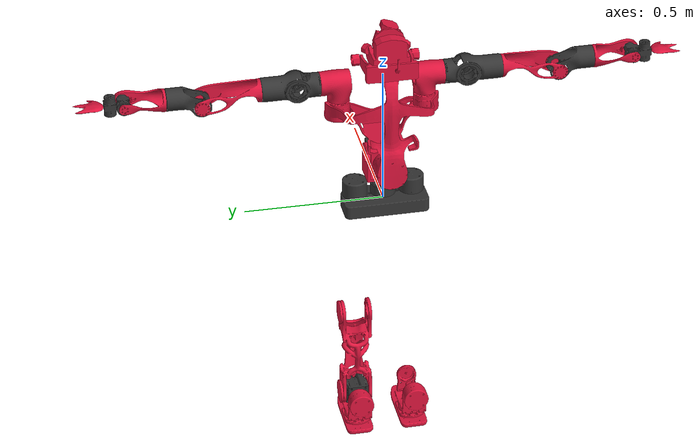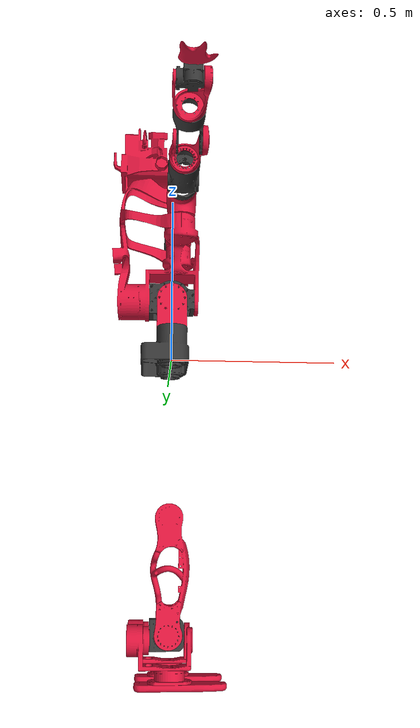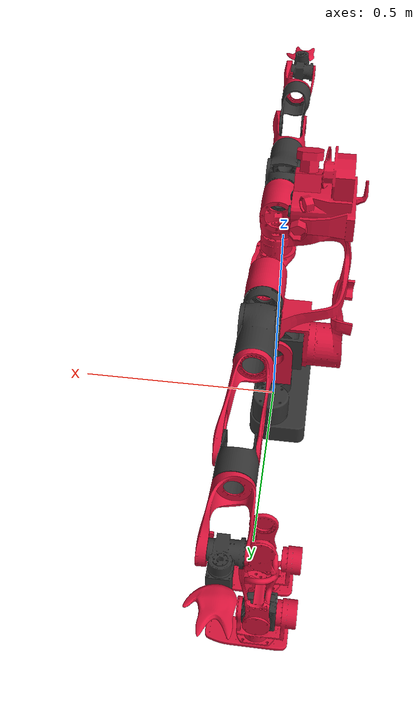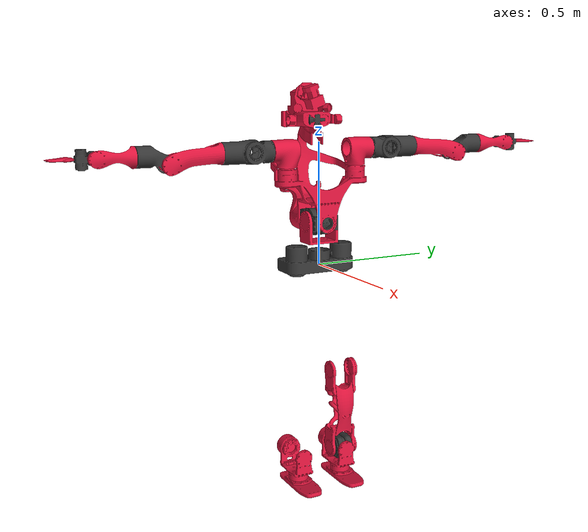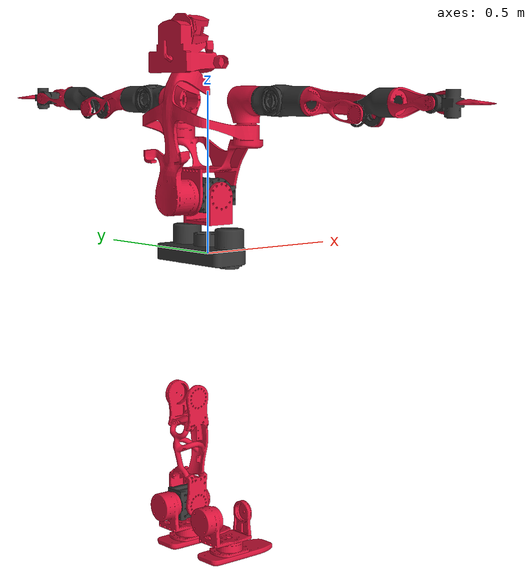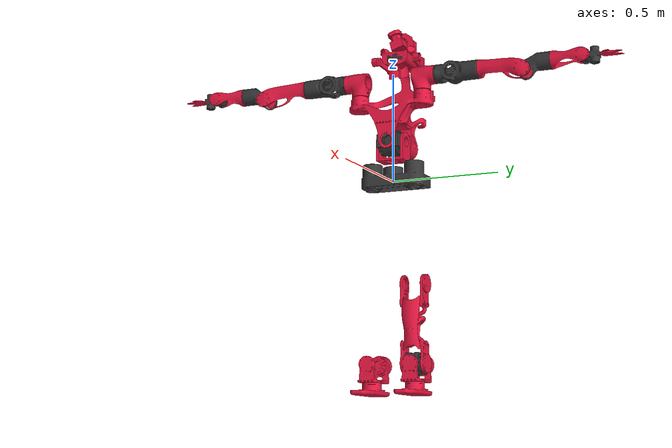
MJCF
<mujoco model="red_robot">
    <compiler angle="radian" meshdir="../meshes/" />
    <size njmax="500" nconmax="100" />
    <asset>
        <mesh name="Pelvis_link" file="Pelvis_link.STL" />
        <mesh name="AnkleRoll_R_Link" file="AnkleRoll_R_Link.STL" />
        <mesh name="Knee_L_Link" file="Knee_L_Link.STL" />
        <mesh name="AnkleCenter_L_Link" file="AnkleCenter_L_Link.STL" />
        <mesh name="AnkleRoll_L_Link" file="AnkleRoll_L_Link.STL" />
        <mesh name="waist1" file="waist1.STL" />
        <mesh name="waist2" file="waist2.STL" />
        <mesh name="upperbody" file="upperbody.STL" />
        <mesh name="R_shoulder1" file="R_shoulder1.STL" />
        <mesh name="R_shoulder2" file="R_shoulder2.STL" />
        <mesh name="R_shoulder3" file="R_shoulder3.STL" />
        <mesh name="R_arm" file="R_arm.STL" />
        <mesh name="R_elbow" file="R_elbow.STL" />
        <mesh name="R_forearm" file="R_forearm.STL" />
        <mesh name="R_wrist1" file="R_wrist1.STL" />
        <mesh name="R_wrist2" file="R_wrist2.STL" />
        <mesh name="L_shoulder1" file="L_shoulder1.STL" />
        <mesh name="L_shoulder2" file="L_shoulder2.STL" />
        <mesh name="L_shoulder3" file="L_shoulder3.STL" />
        <mesh name="L_arm" file="L_arm.STL" />
        <mesh name="L_elbow" file="L_elbow.STL" />
        <mesh name="L_forearm" file="L_forearm.STL" />
        <mesh name="L_wrist1" file="L_wrist1.STL" />
        <mesh name="L_wrist2" file="L_wrist2.STL" />
        <mesh name="neck" file="neck.STL" />
        <mesh name="head" file="head.STL" />
    </asset>
    <worldbody>
        <body name="Pelvis_link" pos="0 0 0">
            <inertial pos="-0.0099622 6.3628e-07 0.012618" quat="0.496444 0.497031 -0.503539 0.502944" mass="0.90054" diaginertia="0.0101981 0.00947498 0.00223109" />
            <geom type="mesh" rgba="0.20313 0.20313 0.20313 1" mesh="Pelvis_link" />
            <body name="HipRoll_R_link" pos="0 -0.1025 -0.1225">
                <inertial pos="-0.06477 0 0.05149" quat="-4.55125e-06 0.706109 4.5641e-06 0.708103" mass="2.679" diaginertia="0.114073 0.114073 0.114073" />
                <joint name="HipRoll_R_Joint" pos="0 0 0" axis="0 0 1" limited="true" range="-0.2618 0.2618" />
                <body name="HipCenter_R_Link" pos="0 0 0">
                    <inertial pos="-0.04801 -0.0022 2e-05" quat="0.999982 -0.00595644 4.6683e-06 -2.7807e-08" mass="2.67" diaginertia="0.124407 0.124407 0.124407" />
                    <joint name="HipCenter_R_Joint" pos="0 0 0" axis="1 0 0" limited="true" range="-0.5236 0.2618" />
                    <body name="Thigh_R_Link" pos="0 0 0">
                        <inertial pos="-0.00042 -0.00032 -0.18904" quat="0.707068 0.00145661 -0.000977354 0.707144" mass="5.366" diaginertia="0.339107 0.339107 0.339107" />
                        <joint name="Thigh_R_Joint" pos="0 0 0" axis="0 1 0" limited="true" range="-1.6581 0.4014" />
                        <body name="Knee_R_Link" pos="0 0 -0.35">
                            <inertial pos="0.00429 0.00214 -0.1428" quat="0.707067 0.00548297 0.00738884 0.707087" mass="3.883" diaginertia="0.23895 0.23895 0.23895" />
                            <joint name="Knee_R_Joint" pos="0 0 0" axis="0 1 0" limited="true" range="-0.0218 1.9722" />
                            <body name="AnkleCenter_R_Link" pos="0 0 -0.35">
                                <inertial pos="-0.00419 -0.0018 -0.0003" quat="0.498858 0.50114 0.501134 0.498863" mass="2.51" diaginertia="0.139901 0.139901 0.139901" />
                                <joint name="AnkleCenter_R_Joint" pos="0 0 0" axis="0 1 0" limited="true" range="-1.5149 1.7505" />
                                <body name="AnkleRoll_R_Link" pos="0 0 0">
                                    <inertial pos="-0.00802 0 -0.08535" quat="0.999815 -0.000353889 0.0192239 9.30274e-05" mass="3.464" diaginertia="0.07616 0.07616 0.07616" />
                                    <joint name="AnkleRoll_R_Joint" pos="0 0 0" axis="1 0 0" limited="true" range="-0.3491 0.3491" />
                                    <geom type="mesh" rgba="0.85938 0.07813 0.23438 1" mesh="AnkleRoll_R_Link" />
                                    <body name="r_sole" pos="0 0 -0.1451">
                                        <inertial pos="0 0 -0.1451" mass="0" diaginertia="0 0 0" />
                                    </body>
                                </body>
                            </body>
                        </body>
                    </body>
                </body>
            </body>
            <body name="HipRoll_L_Link" pos="0 0.1025 -0.1225">
                <inertial pos="-0.06477 0 0.05149" quat="-4.55125e-06 0.706109 4.5641e-06 0.708103" mass="2.679" diaginertia="0.114073 0.114073 0.114073" />
                <joint name="HipRoll_L_Joint" pos="0 0 0" axis="0 0 1" limited="true" range="-0.2618 0.2618" />
                <body name="HipCenter_L_Link" pos="0 0 0">
                    <inertial pos="-0.04801 0.0022 2e-05" quat="0.999982 -0.00595644 4.6683e-06 -2.7807e-08" mass="2.67" diaginertia="0.124407 0.124407 0.124407" />
                    <joint name="HipCenter_L_Joint" pos="0 0 0" axis="1 0 0" limited="true" range="-0.2618 0.5236" />
                    <body name="Thigh_L_Link" pos="0 0 0">
                        <inertial pos="-0.00042 0.00032 -0.18904" quat="0.707068 0.00145661 -0.000977354 0.707144" mass="5.366" diaginertia="0.339107 0.339107 0.339107" />
                        <joint name="Thigh_L_Joint" pos="0 0 0" axis="0 1 0" limited="true" range="-1.6581 0.4014" />
                        <body name="Knee_L_Link" pos="0 0 -0.35">
                            <inertial pos="0.00429 -0.00214 -0.1428" quat="0.707067 0.00548297 0.00738884 0.707087" mass="3.883" diaginertia="0.23895 0.23895 0.23895" />
                            <joint name="Knee_L_Joint" pos="0 0 0" axis="0 1 0" limited="true" range="-0.0218 1.9722" />
                            <geom type="mesh" rgba="0.85938 0.07813 0.23438 1" mesh="Knee_L_Link" />
                            <body name="AnkleCenter_L_Link" pos="0 0 -0.35">
                                <inertial pos="-0.00419 0.0018 -0.0003" quat="0.498858 0.50114 0.501134 0.498863" mass="2.51" diaginertia="0.139901 0.139901 0.139901" />
                                <joint name="AnkleCenter_L_Joint" pos="0 0 0" axis="0 1 0" limited="true" range="-1.5149 1.7505" />
                                <geom type="mesh" rgba="0.20313 0.20313 0.20313 1" mesh="AnkleCenter_L_Link" />
                                <body name="AnkleRoll_L_Link" pos="0 0 0">
                                    <inertial pos="-0.00802 0 -0.08535" quat="0.999815 -0.000353889 0.0192239 9.30274e-05" mass="3.464" diaginertia="0.07616 0.07616 0.07616" />
                                    <joint name="AnkleRoll_L_Joint" pos="0 0 0" axis="1 0 0" limited="true" range="-0.3491 0.3491" />
                                    <geom type="mesh" rgba="0.85938 0.07813 0.23438 1" mesh="AnkleRoll_L_Link" />
                                    <body name="l_sole" pos="0 0 -0.1451">
                                        <inertial pos="0 0 -0.1451" mass="0" diaginertia="0 0 0" />
                                    </body>
                                </body>
                            </body>
                        </body>
                    </body>
                </body>
            </body>
            <body name="Waist1" pos="0 0 0.18">
                <inertial pos="-1e-05 0.00756 -0.04182" quat="0.777569 0.628798 0.00013711 -0.000298724" mass="0.74235" diaginertia="0.00325468 0.00275208 0.00160525" />
                <joint name="J_waist1" pos="0 0 0" axis="0 0 1" limited="true" range="-2.094 2.094" />
                <geom type="mesh" rgba="0.85938 0.07813 0.23438 1" mesh="waist1" />
                <body name="Waist2" pos="0 0 0">
                    <inertial pos="-0.00065 0.00063 1e-05" quat="-0.03066 0.706505 0.0323363 0.706303" mass="3.27104" diaginertia="0.00602217 0.00497743 0.00462003" />
                    <joint name="J_waist2" pos="0 0 0" axis="0 1 0" limited="true" range="-2.094 2.094" />
                    <geom type="mesh" rgba="0.20313 0.20313 0.20313 1" mesh="waist2" />
                    <body name="Upperbody" pos="0 0 0">
                        <inertial pos="-0.04733 0.00045 0.16266" quat="0.991102 -0.0169683 -0.127089 0.0357278" mass="16.4339" diaginertia="0.274269 0.242103 0.173253" />
                        <joint name="J_waist3" pos="0 0 0" axis="-1 0 0" limited="true" range="-2.094 2.094" />
                        <geom type="mesh" rgba="0.85938 0.07813 0.23438 1" mesh="upperbody" />
                        <body name="R_shoulder1" pos="0.023 -0.154 0.2275">
                            <inertial pos="-3e-05 -0.00397 0.06029" quat="0.726697 -0.0963065 0.0971448 0.673201" mass="1.6761" diaginertia="0.00195894 0.00192612 0.00165512" />
                            <joint name="J_rshoulder1" pos="0 0 0" axis="0 0 1" limited="true" range="-1.54 2.09" />
                            <geom type="mesh" rgba="0.85938 0.07813 0.23438 1" mesh="R_shoulder1" />
                            <body name="R_shoulder2" pos="0 -0.0341 0.065">
                                <inertial pos="0.00107 -0.0491 -1e-05" quat="0.51724 0.479014 -0.520322 0.481948" mass="0.4016" diaginertia="0.00106758 0.000992068 0.000622085" />
                                <joint name="J_rshoulder2" pos="0 0 0" axis="0 -1 0" limited="true" range="-3.14159 3.14159" />
                                <geom type="mesh" rgba="0.20313 0.20313 0.20313 1" mesh="R_shoulder2" />
                                <body name="R_shoulder3" pos="0 -0.115 0">
                                    <inertial pos="0.00262 -0.04826 0.00023" quat="0.708332 0.705198 0.0253721 0.0177923" mass="2.90141" diaginertia="0.00846385 0.00829688 0.00247134" />
                                    <joint name="J_rshoulder3" pos="0 0 0" axis="-1 0 0" limited="true" range="-1.9199 1.9199" />
                                    <geom type="mesh" rgba="0.20313 0.20313 0.20313 1" mesh="R_shoulder3" />
                                    <body name="R_armlink" pos="0 -0.1281 0">
                                        <inertial pos="0.01896 -0.11642 -0.0119" quat="0.503607 0.520285 -0.555379 0.408947" mass="0.43517" diaginertia="0.00318243 0.00291909 0.000624466" />
                                        <joint name="J_rarm" pos="0 0 0" axis="0 -1 0" limited="true" range="-3.14159 3.14159" />
                                        <geom type="mesh" rgba="0.85938 0.07813 0.23438 1" mesh="R_arm" />
                                        <body name="R_elbow" pos="0 -0.207 -0.0325">
                                            <inertial pos="-0.00136 -0.05256 0.01764" quat="0.517663 0.708306 -0.39581 0.27141" mass="1.96511" diaginertia="0.0065354 0.00631431 0.00138011" />
                                            <joint name="J_relbow" pos="0 0 0" axis="1 0 0" limited="true" range="-2.967 3.14159" />
                                            <geom type="mesh" rgba="0.20313 0.20313 0.20313 1" mesh="R_elbow" />
                                            <body name="R_forearm" pos="0 -0.1244 0.0325">
                                                <inertial pos="0.01426 -0.0767 0.00033" quat="0.55187 0.502809 -0.506596 0.431257" mass="0.30234" diaginertia="0.00126963 0.00106149 0.000388409" />
                                                <joint name="J_rforearm" pos="0 0 0" axis="0 -1 0" limited="true" range="-3.14159 3.14159" />
                                                <geom type="mesh" rgba="0.85938 0.07813 0.23438 1" mesh="R_forearm" />
                                                <body name="R_wrist1" pos="0 -0.1451 0">
                                                    <inertial pos="-0.00158 -0.02153 3e-05" quat="0.524952 0.47885 -0.521387 0.472529" mass="0.70923" diaginertia="0.000683192 0.000650502 0.000394067" />
                                                    <joint name="J_rwrist1" pos="0 0 0" axis="1 0 0" limited="true" range="-3.14159 3.14159" />
                                                    <geom type="mesh" rgba="0.20313 0.20313 0.20313 1" mesh="R_wrist1" />
                                                    <body name="R_wrist2" pos="0 -0.046 0">
                                                        <inertial pos="0.00063 -0.04326 0.00178" quat="0.401991 0.580067 -0.391171 0.590687" mass="2" diaginertia="0.00152121 0.000897467 0.00066451" />
                                                        <joint name="J_rwrist2" pos="0 0 0" axis="0 0 1" limited="true" range="-2.094 2.094" />
                                                        <geom pos="0 -0.02 0" type="mesh" rgba="0.85938 0.07813 0.23438 1" mesh="R_wrist2" />
                                                    </body>
                                                </body>
                                            </body>
                                        </body>
                                    </body>
                                </body>
                            </body>
                        </body>
                        <body name="L_shoulder1" pos="0.023 0.154 0.2275">
                            <inertial pos="-3e-05 0.00397 0.06029" quat="0.678735 0.0962618 -0.0973029 0.721516" mass="1.6762" diaginertia="0.00195894 0.0019255 0.00165624" />
                            <joint name="J_lshoulder1" pos="0 0 0" axis="0 0 1" limited="true" range="-2.09 1.54" />
                            <geom type="mesh" rgba="0.85938 0.07813 0.23438 1" mesh="L_shoulder1" />
                            <body name="L_shoulder2" pos="0 0.0341 0.065">
                                <inertial pos="0.00105 0.0491 0.00072" quat="0.505643 0.530275 -0.454725 0.50632" mass="0.4016" diaginertia="0.0010679 0.000992442 0.000622153" />
                                <joint name="J_lshoulder2" pos="0 0 0" axis="0 1 0" limited="true" range="-3.14159 3.14159" />
                                <geom type="mesh" rgba="0.20313 0.20313 0.20313 1" mesh="L_shoulder2" />
                                <body name="L_shoulder3" pos="0 0.115 0">
                                    <inertial pos="0.00262 0.04826 0.00023" quat="0.705235 0.708306 -0.0189048 -0.0242641" mass="2.90141" diaginertia="0.00846389 0.00829694 0.00247136" />
                                    <joint name="J_lshoulder3" pos="0 0 0" axis="-1 0 0" limited="true" range="-1.9199 1.9199" />
                                    <geom type="mesh" rgba="0.20313 0.20313 0.20313 1" mesh="L_shoulder3" />
                                    <body name="L_armlink" pos="0 0.1281 0">
                                        <inertial pos="0.01896 0.11642 -0.0119" quat="0.347907 0.489959 -0.581992 0.547894" mass="0.43489" diaginertia="0.00320655 0.0028919 0.000675071" />
                                        <joint name="J_larm" pos="0 0 0" axis="0 1 0" limited="true" range="-3.14159 3.14159" />
                                        <geom type="mesh" rgba="0.85938 0.07813 0.23438 1" mesh="L_arm" />
                                        <body name="L_elbow" pos="0 0.207 -0.0325">
                                            <inertial pos="-0.00136 0.05256 0.01764" quat="0.708306 0.517663 -0.27141 0.39581" mass="1.96511" diaginertia="0.0065354 0.00631431 0.00138011" />
                                            <joint name="J_lelbow" pos="0 0 0" axis="1 0 0" limited="true" range="-3.14159 2.8" />
                                            <geom type="mesh" rgba="0.20313 0.20313 0.20313 1" mesh="L_elbow" />
                                            <body name="L_forearm" pos="0 0.1244 0.0325">
                                                <inertial pos="0.01426 0.0767 0.00033" quat="0.502809 0.55187 -0.431257 0.506596" mass="0.30234" diaginertia="0.00126963 0.00106149 0.000388409" />
                                                <joint name="J_lforearm" pos="0 0 0" axis="0 1 0" limited="true" range="-3.14159 3.14159" />
                                                <geom type="mesh" rgba="0.85938 0.07813 0.23438 1" mesh="L_forearm" />
                                                <body name="L_wrist1" pos="0 0.1451 0">
                                                    <inertial pos="-0.00158 0.02153 3e-05" quat="0.474698 0.521107 -0.476676 0.525252" mass="0.70923" diaginertia="0.00068319 0.000650504 0.000394066" />
                                                    <joint name="J_lwrist1" pos="0 0 0" axis="1 0 0" limited="true" range="-3.14159 3.14159" />
                                                    <geom type="mesh" rgba="0.20313 0.20313 0.20313 1" mesh="L_wrist1" />
                                                    <body name="L_wrist2" pos="0 0.046 0">
                                                        <inertial pos="0.00063 0.04326 0.00178" quat="0.580067 0.401991 -0.590687 0.391171" mass="2" diaginertia="0.00152121 0.000897467 0.00066451" />
                                                        <joint name="J_lwrist2" pos="0 0 0" axis="0 0 1" limited="true" range="-2.094 2.094" />
                                                        <geom pos="0 0.02 0" type="mesh" rgba="0.85938 0.07813 0.23438 1" mesh="L_wrist2" />
                                                    </body>
                                                </body>
                                            </body>
                                        </body>
                                    </body>
                                </body>
                            </body>
                        </body>
                        <body name="Neck" pos="-0.036 0 0.3795">
                            <inertial pos="0 -0.00247 0.02752" quat="0.401331 0.402035 -0.582442 0.581432" mass="0.37746" diaginertia="0.000226161 0.000226016 0.000105591" />
                            <joint name="J_neck" pos="0 0 0" axis="0 0 1" limited="true" range="-2.094 2.094" />
                            <geom type="mesh" rgba="0.20313 0.20313 0.20313 1" mesh="neck" />
                            <body name="Head" pos="0 0 0.0275">
                                <inertial pos="0.01311 2e-05 0.12168" quat="0.681514 0.186859 0.185855 0.682701" mass="2.712" diaginertia="0.0107031 0.00905101 0.00687919" />
                                <joint name="J_head" pos="0 0 0" axis="0 1 0" limited="true" range="-2.094 2.094" />
                                <geom type="mesh" rgba="0.85938 0.07813 0.23438 1" mesh="head" />
                            </body>
                        </body>
                    </body>
                </body>
            </body>
        </body>
    </worldbody>
</mujoco>
